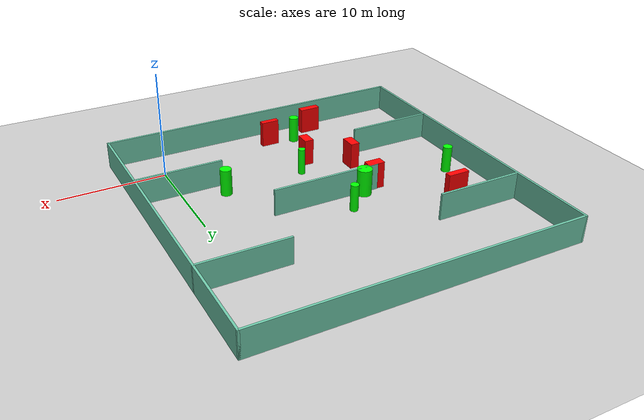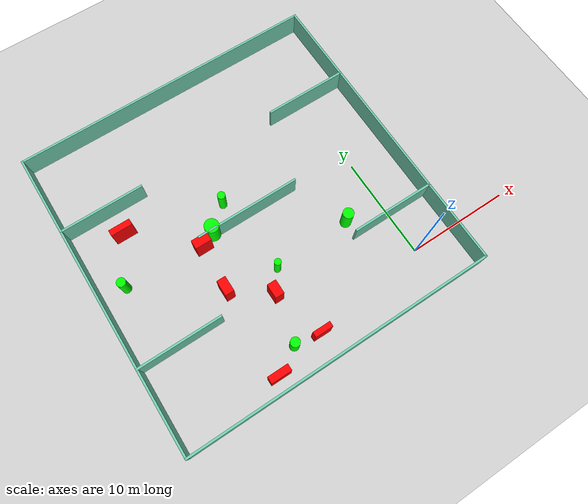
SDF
<sdf version="1.7">
 <world name="default">
  <light name="sun" type="directional">
   <pose>0 0 10 0 -0 0</pose>
   <diffuse>0.8 0.8 0.8 1</diffuse>
   <specular>0.2 0.2 0.2 1</specular>
   <attenuation>
    <range>1000</range>
    <constant>0.9</constant>
    <linear>0.01</linear>
    <quadratic>0.001</quadratic>
   </attenuation>
   <direction>-0.5 0.1 -0.9</direction>
   <spot><inner_angle>0</inner_angle><outer_angle>0</outer_angle><falloff>0</falloff></spot>
  </light>
  <model name="ground_plane">
   <static>1</static>
   <link name="link">
    <collision name="collision">
     <geometry><plane><normal>0 0 1</normal><size>100 100</size></plane></geometry>
     <surface>
      <contact><collide_bitmask>65535</collide_bitmask></contact>
      <friction><ode><mu>100</mu><mu2>50</mu2></ode></friction>
     </surface>
    </collision>
    <visual name="visual">
     <cast_shadows>0</cast_shadows>
     <geometry><plane><normal>0 0 1</normal><size>100 100</size></plane></geometry>
     <material>
      <script><uri>file://media/materials/scripts/gazebo.material</uri><name>Gazebo/Grey</name></script>
     </material>
    </visual>
   </link>
  </model>
  <gravity>0 0 -9.8</gravity>
  <magnetic_field>6e-06 2.3e-05 -4.2e-05</magnetic_field>
  <atmosphere type="adiabatic"/>
  <physics type="ode">
   <max_step_size>0.001</max_step_size>
   <real_time_factor>1</real_time_factor>
   <real_time_update_rate>1000</real_time_update_rate>
  </physics>
  <scene><ambient>0.4 0.4 0.4 1</ambient><background>0.7 0.7 0.7 1</background><shadows>1</shadows></scene>
  <spherical_coordinates>
   <surface_model>EARTH_WGS84</surface_model>
   <latitude_deg>0</latitude_deg>
   <longitude_deg>0</longitude_deg>
   <elevation>0</elevation>
   <heading_deg>0</heading_deg>
  </spherical_coordinates>
  <model name="my_base_walls">
   <link name="Wall_10">
    <collision name="Wall_10_Collision">
     <geometry><box><size>8.2 0.2 2.5</size></box></geometry>
     <pose>0 0 1.25 0 -0 0</pose>
    </collision>
    <visual name="Wall_10_Visual">
     <pose>0 0 1.25 0 -0 0</pose>
     <geometry><box><size>8.2 0.2 2.5</size></box></geometry>
     <material>
      <script><uri>file://media/materials/scripts/gazebo.material</uri><name>Gazebo/Grey</name></script>
      <ambient>0.435294 0.796078 0.67451 1</ambient>
     </material>
     <meta><layer>0</layer></meta>
    </visual>
    <pose>-11 -7 0 0 -0 0</pose>
   </link>
   <link name="Wall_12">
    <collision name="Wall_12_Collision">
     <geometry><box><size>8.2 0.2 2.5</size></box></geometry>
     <pose>0 0 1.25 0 -0 0</pose>
    </collision>
    <visual name="Wall_12_Visual">
     <pose>0 0 1.25 0 -0 0</pose>
     <geometry><box><size>8.2 0.2 2.5</size></box></geometry>
     <material>
      <script><uri>file://media/materials/scripts/gazebo.material</uri><name>Gazebo/Grey</name></script>
      <ambient>0.435294 0.796078 0.67451 1</ambient>
     </material>
     <meta><layer>0</layer></meta>
    </visual>
    <pose>-11 7 0 0 -0 0</pose>
   </link>
   <link name="Wall_14">
    <collision name="Wall_14_Collision">
     <geometry><box><size>8.2 0.2 2.5</size></box></geometry>
     <pose>0 0 1.25 0 -0 0</pose>
    </collision>
    <visual name="Wall_14_Visual">
     <pose>0 0 1.25 0 -0 0</pose>
     <geometry><box><size>8.2 0.2 2.5</size></box></geometry>
     <material>
      <script><uri>file://media/materials/scripts/gazebo.material</uri><name>Gazebo/Grey</name></script>
      <ambient>0.435294 0.796078 0.67451 1</ambient>
     </material>
     <meta><layer>0</layer></meta>
    </visual>
    <pose>11 7 0 0 -0 3.14159</pose>
   </link>
   <link name="Wall_16">
    <collision name="Wall_16_Collision">
     <geometry><box><size>10.2 0.2 2.5</size></box></geometry>
     <pose>0 0 1.25 0 -0 0</pose>
    </collision>
    <visual name="Wall_16_Visual">
     <pose>0 0 1.25 0 -0 0</pose>
     <geometry><box><size>10.2 0.2 2.5</size></box></geometry>
     <material>
      <script><uri>file://media/materials/scripts/gazebo.material</uri><name>Gazebo/Grey</name></script>
      <ambient>0.435294 0.796078 0.67451 1</ambient>
     </material>
     <meta><layer>0</layer></meta>
    </visual>
    <pose>0 0 0 0 -0 3.14159</pose>
   </link>
   <link name="Wall_2">
    <collision name="Wall_2_Collision">
     <geometry><box><size>30.2 0.2 2.5</size></box></geometry>
     <pose>0 0 1.25 0 -0 0</pose>
    </collision>
    <visual name="Wall_2_Visual">
     <pose>0 0 1.25 0 -0 0</pose>
     <geometry><box><size>30.2 0.2 2.5</size></box></geometry>
     <material>
      <script><uri>file://media/materials/scripts/gazebo.material</uri><name>Gazebo/Grey</name></script>
      <ambient>0.435294 0.796078 0.67451 1</ambient>
     </material>
     <meta><layer>0</layer></meta>
    </visual>
    <pose>0 -15 0 0 -0 3.14159</pose>
   </link>
   <link name="Wall_3">
    <collision name="Wall_3_Collision">
     <geometry><box><size>30.2 0.2 2.5</size></box></geometry>
     <pose>0 0 1.25 0 -0 0</pose>
    </collision>
    <visual name="Wall_3_Visual">
     <pose>0 0 1.25 0 -0 0</pose>
     <geometry><box><size>30.2 0.2 2.5</size></box></geometry>
     <material>
      <script><uri>file://media/materials/scripts/gazebo.material</uri><name>Gazebo/Grey</name></script>
      <ambient>0.435294 0.796078 0.67451 1</ambient>
     </material>
     <meta><layer>0</layer></meta>
    </visual>
    <pose>-15 0 0 0 -0 1.5708</pose>
   </link>
   <link name="Wall_4">
    <collision name="Wall_4_Collision">
     <geometry><box><size>30.2 0.2 2.5</size></box></geometry>
     <pose>0 0 1.25 0 -0 0</pose>
    </collision>
    <visual name="Wall_4_Visual">
     <pose>0 0 1.25 0 -0 0</pose>
     <geometry><box><size>30.2 0.2 2.5</size></box></geometry>
     <material>
      <script><uri>file://media/materials/scripts/gazebo.material</uri><name>Gazebo/Grey</name></script>
      <ambient>0.435294 0.796078 0.67451 1</ambient>
     </material>
     <meta><layer>0</layer></meta>
    </visual>
    <pose>0 15 0 0 -0 0</pose>
   </link>
   <link name="Wall_6">
    <collision name="Wall_6_Collision">
     <geometry><box><size>30.2 0.2 2.5</size></box></geometry>
     <pose>0 0 1.25 0 -0 0</pose>
    </collision>
    <visual name="Wall_6_Visual">
     <pose>0 0 1.25 0 -0 0</pose>
     <geometry><box><size>30.2 0.2 2.5</size></box></geometry>
     <material>
      <script><uri>file://media/materials/scripts/gazebo.material</uri><name>Gazebo/Grey</name></script>
      <ambient>0.435294 0.796078 0.67451 1</ambient>
     </material>
     <meta><layer>0</layer></meta>
    </visual>
    <pose>15 0 0 0 -0 1.5708</pose>
   </link>
   <link name="Wall_8">
    <collision name="Wall_8_Collision">
     <geometry><box><size>8.2 0.2 2.5</size></box></geometry>
     <pose>0 0 1.25 0 -0 0</pose>
    </collision>
    <visual name="Wall_8_Visual">
     <pose>0 0 1.25 0 -0 0</pose>
     <geometry><box><size>8.2 0.2 2.5</size></box></geometry>
     <material>
      <script><uri>file://media/materials/scripts/gazebo.material</uri><name>Gazebo/Grey</name></script>
      <ambient>0.435294 0.796078 0.67451 1</ambient>
     </material>
     <meta><layer>0</layer></meta>
    </visual>
    <pose>11 -7 0 0 -0 3.14159</pose>
   </link>
   <static>1</static>
   <pose>-11 11 0 0 -0 0</pose>
  </model>
  <model name="cylinder1">
   <static>1</static>
   <link name="link">
    <inertial>
     <mass>1</mass>
     <inertia><ixx>0.5</ixx><ixy>0</ixy><ixz>0</ixz><iyy>0.5</iyy><iyz>0</iyz><izz>1</izz></inertia>
    </inertial>
    <collision name="collision">
     <geometry><cylinder><radius>0.6858504738749507</radius><length>2.5</length></cylinder></geometry>
    </collision>
    <visual name="visual">
     <geometry><cylinder><radius>0.6858504738749507</radius><length>2.5</length></cylinder></geometry>
     <material>
      <ambient>0 1 0 1</ambient>
      <diffuse>0 1 0 1</diffuse>
      <specular>0.1 0.1 0.1 1</specular>
      <emissive>0 0 0 0</emissive>
     </material>
    </visual>
   </link>
   <pose>-14.58014254096023 11.291366828805238 1.25 0 0 0</pose>
  </model>
  <model name="cylinder2">
   <static>1</static>
   <link name="link">
    <inertial>
     <mass>1</mass>
     <inertia><ixx>0.5</ixx><ixy>0</ixy><ixz>0</ixz><iyy>0.5</iyy><iyz>0</iyz><izz>1</izz></inertia>
    </inertial>
    <collision name="collision">
     <geometry><cylinder><radius>0.3742955053867078</radius><length>2.5</length></cylinder></geometry>
    </collision>
    <visual name="visual">
     <geometry><cylinder><radius>0.3742955053867078</radius><length>2.5</length></cylinder></geometry>
     <material>
      <ambient>0 1 0 1</ambient>
      <diffuse>0 1 0 1</diffuse>
      <specular>0.1 0.1 0.1 1</specular>
      <emissive>0 0 0 0</emissive>
     </material>
    </visual>
   </link>
   <pose>-12.362016407881564 13.29691317567438 1.25 0 0 0</pose>
  </model>
  <model name="cylinder3">
   <static>1</static>
   <link name="link">
    <inertial>
     <mass>1</mass>
     <inertia><ixx>0.5</ixx><ixy>0</ixy><ixz>0</ixz><iyy>0.5</iyy><iyz>0</iyz><izz>1</izz></inertia>
    </inertial>
    <collision name="collision">
     <geometry><cylinder><radius>0.4283193537341589</radius><length>2.5</length></cylinder></geometry>
    </collision>
    <visual name="visual">
     <geometry><cylinder><radius>0.4283193537341589</radius><length>2.5</length></cylinder></geometry>
     <material>
      <ambient>0 1 0 1</ambient>
      <diffuse>0 1 0 1</diffuse>
      <specular>0.1 0.1 0.1 1</specular>
      <emissive>0 0 0 0</emissive>
     </material>
    </visual>
   </link>
   <pose>-23.67947502371749 11.099518750144883 1.25 0 0 0</pose>
  </model>
  <model name="cylinder4">
   <static>1</static>
   <link name="link">
    <inertial>
     <mass>1</mass>
     <inertia><ixx>0.5</ixx><ixy>0</ixy><ixz>0</ixz><iyy>0.5</iyy><iyz>0</iyz><izz>1</izz></inertia>
    </inertial>
    <collision name="collision">
     <geometry><cylinder><radius>0.3226105327442812</radius><length>2.5</length></cylinder></geometry>
    </collision>
    <visual name="visual">
     <geometry><cylinder><radius>0.3226105327442812</radius><length>2.5</length></cylinder></geometry>
     <material>
      <ambient>0 1 0 1</ambient>
      <diffuse>0 1 0 1</diffuse>
      <specular>0.1 0.1 0.1 1</specular>
      <emissive>0 0 0 0</emissive>
     </material>
    </visual>
   </link>
   <pose>-11.461027282319304 5.358661983732002 1.25 0 0 0</pose>
  </model>
  <model name="cylinder5">
   <static>1</static>
   <link name="link">
    <inertial>
     <mass>1</mass>
     <inertia><ixx>0.5</ixx><ixy>0</ixy><ixz>0</ixz><iyy>0.5</iyy><iyz>0</iyz><izz>1</izz></inertia>
    </inertial>
    <collision name="collision">
     <geometry><cylinder><radius>0.5254537891767455</radius><length>2.5</length></cylinder></geometry>
    </collision>
    <visual name="visual">
     <geometry><cylinder><radius>0.5254537891767455</radius><length>2.5</length></cylinder></geometry>
     <material>
      <ambient>0 1 0 1</ambient>
      <diffuse>0 1 0 1</diffuse>
      <specular>0.1 0.1 0.1 1</specular>
      <emissive>0 0 0 0</emissive>
     </material>
    </visual>
   </link>
   <pose>-3.7374884931180894 5.692994337655918 1.25 0 0 0</pose>
  </model>
  <model name="cylinder6">
   <static>1</static>
   <link name="link">
    <inertial>
     <mass>1</mass>
     <inertia><ixx>0.5</ixx><ixy>0</ixy><ixz>0</ixz><iyy>0.5</iyy><iyz>0</iyz><izz>1</izz></inertia>
    </inertial>
    <collision name="collision">
     <geometry><cylinder><radius>0.4488417813187831</radius><length>2.5</length></cylinder></geometry>
    </collision>
    <visual name="visual">
     <geometry><cylinder><radius>0.4488417813187831</radius><length>2.5</length></cylinder></geometry>
     <material>
      <ambient>0 1 0 1</ambient>
      <diffuse>0 1 0 1</diffuse>
      <specular>0.1 0.1 0.1 1</specular>
      <emissive>0 0 0 0</emissive>
     </material>
    </visual>
   </link>
   <pose>-13.964128055832006 -1.1637545264535625 1.25 0 0 0</pose>
  </model>
  <model name="box1">
   <static>1</static>
   <link name="link">
    <inertial>
     <mass>1</mass>
     <inertia><ixx>0.083</ixx><ixy>0</ixy><ixz>0</ixz><iyy>0.083</iyy><iyz>0</iyz><izz>0.083</izz></inertia>
    </inertial>
    <collision name="collision">
     <geometry><box><size>1.9769318341907147 0.6569226967495676 2.5</size></box></geometry>
    </collision>
    <visual name="visual">
     <geometry><box><size>1.9769318341907147 0.6569226967495676 2.5</size></box></geometry>
     <material>
      <ambient>1 0 0 1</ambient>
      <diffuse>1 0 0 1</diffuse>
      <specular>0.1 0.1 0.1 1</specular>
      <emissive>0 0 0 0</emissive>
     </material>
    </visual>
    <sensor name="my_contact" type="contact">
     <contact><collision>box_collision</collision><topic>__default_topic__</topic></contact>
    </sensor>
   </link>
   <pose>-16.42190488705925 -2.5792041675636677 1.25 0 0 0</pose>
  </model>
  <model name="box2">
   <static>1</static>
   <link name="link">
    <inertial>
     <mass>1</mass>
     <inertia><ixx>0.083</ixx><ixy>0</ixy><ixz>0</ixz><iyy>0.083</iyy><iyz>0</iyz><izz>0.083</izz></inertia>
    </inertial>
    <collision name="collision">
     <geometry><box><size>0.8626238667300048 1.4869786098595905 2.5</size></box></geometry>
    </collision>
    <visual name="visual">
     <geometry><box><size>0.8626238667300048 1.4869786098595905 2.5</size></box></geometry>
     <material>
      <ambient>1 0 0 1</ambient>
      <diffuse>1 0 0 1</diffuse>
      <specular>0.1 0.1 0.1 1</specular>
      <emissive>0 0 0 0</emissive>
     </material>
    </visual>
    <sensor name="my_contact" type="contact">
     <contact><collision>box_collision</collision><topic>__default_topic__</topic></contact>
    </sensor>
   </link>
   <pose>-16.359356191608406 6.002868193837571 1.25 0 0 0</pose>
  </model>
  <model name="box3">
   <static>1</static>
   <link name="link">
    <inertial>
     <mass>1</mass>
     <inertia><ixx>0.083</ixx><ixy>0</ixy><ixz>0</ixz><iyy>0.083</iyy><iyz>0</iyz><izz>0.083</izz></inertia>
    </inertial>
    <collision name="collision">
     <geometry><box><size>0.8671779306616043 1.3724895593783928 2.5</size></box></geometry>
    </collision>
    <visual name="visual">
     <geometry><box><size>0.8671779306616043 1.3724895593783928 2.5</size></box></geometry>
     <material>
      <ambient>1 0 0 1</ambient>
      <diffuse>1 0 0 1</diffuse>
      <specular>0.1 0.1 0.1 1</specular>
      <emissive>0 0 0 0</emissive>
     </material>
    </visual>
    <sensor name="my_contact" type="contact">
     <contact><collision>box_collision</collision><topic>__default_topic__</topic></contact>
    </sensor>
   </link>
   <pose>-12.896809679211145 3.4611972756022897 1.25 0 0 0</pose>
  </model>
  <model name="box4">
   <static>1</static>
   <link name="link">
    <inertial>
     <mass>1</mass>
     <inertia><ixx>0.083</ixx><ixy>0</ixy><ixz>0</ixz><iyy>0.083</iyy><iyz>0</iyz><izz>0.083</izz></inertia>
    </inertial>
    <collision name="collision">
     <geometry><box><size>2.0510179267961384 0.5960873410384548 2.5</size></box></geometry>
    </collision>
    <visual name="visual">
     <geometry><box><size>2.0510179267961384 0.5960873410384548 2.5</size></box></geometry>
     <material>
      <ambient>1 0 0 1</ambient>
      <diffuse>1 0 0 1</diffuse>
      <specular>0.1 0.1 0.1 1</specular>
      <emissive>0 0 0 0</emissive>
     </material>
    </visual>
    <sensor name="my_contact" type="contact">
     <contact><collision>box_collision</collision><topic>__default_topic__</topic></contact>
    </sensor>
   </link>
   <pose>-21.415678204070073 15.512298780541151 1.25 0 0 0</pose>
  </model>
  <model name="box5">
   <static>1</static>
   <link name="link">
    <inertial>
     <mass>1</mass>
     <inertia><ixx>0.083</ixx><ixy>0</ixy><ixz>0</ixz><iyy>0.083</iyy><iyz>0</iyz><izz>0.083</izz></inertia>
    </inertial>
    <collision name="collision">
     <geometry><box><size>1.7244990872778088 0.512998382500233 2.5</size></box></geometry>
    </collision>
    <visual name="visual">
     <geometry><box><size>1.7244990872778088 0.512998382500233 2.5</size></box></geometry>
     <material>
      <ambient>1 0 0 1</ambient>
      <diffuse>1 0 0 1</diffuse>
      <specular>0.1 0.1 0.1 1</specular>
      <emissive>0 0 0 0</emissive>
     </material>
    </visual>
    <sensor name="my_contact" type="contact">
     <contact><collision>box_collision</collision><topic>__default_topic__</topic></contact>
    </sensor>
   </link>
   <pose>-11.457306107455254 -1.5332544754782509 1.25 0 0 0</pose>
  </model>
  <model name="box6">
   <static>1</static>
   <link name="link">
    <inertial>
     <mass>1</mass>
     <inertia><ixx>0.083</ixx><ixy>0</ixy><ixz>0</ixz><iyy>0.083</iyy><iyz>0</iyz><izz>0.083</izz></inertia>
    </inertial>
    <collision name="collision">
     <geometry><box><size>1.5885953535648554 0.8793318205492289 2.5</size></box></geometry>
    </collision>
    <visual name="visual">
     <geometry><box><size>1.5885953535648554 0.8793318205492289 2.5</size></box></geometry>
     <material>
      <ambient>1 0 0 1</ambient>
      <diffuse>1 0 0 1</diffuse>
      <specular>0.1 0.1 0.1 1</specular>
      <emissive>0 0 0 0</emissive>
     </material>
    </visual>
    <sensor name="my_contact" type="contact">
     <contact><collision>box_collision</collision><topic>__default_topic__</topic></contact>
    </sensor>
   </link>
   <pose>-16.021249009149358 10.610941657668754 1.25 0 0 0</pose>
  </model>
 </world>
</sdf>
